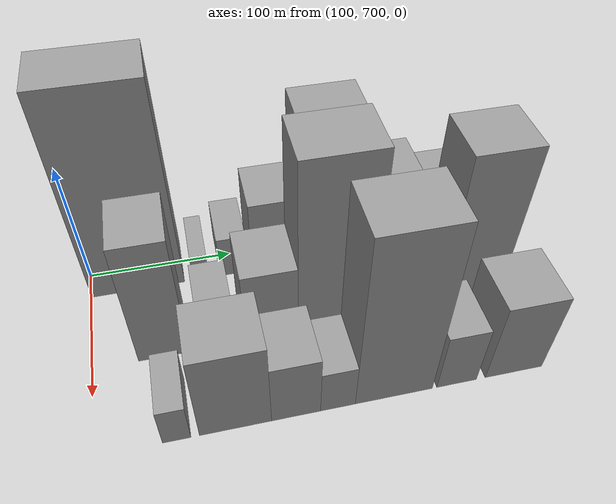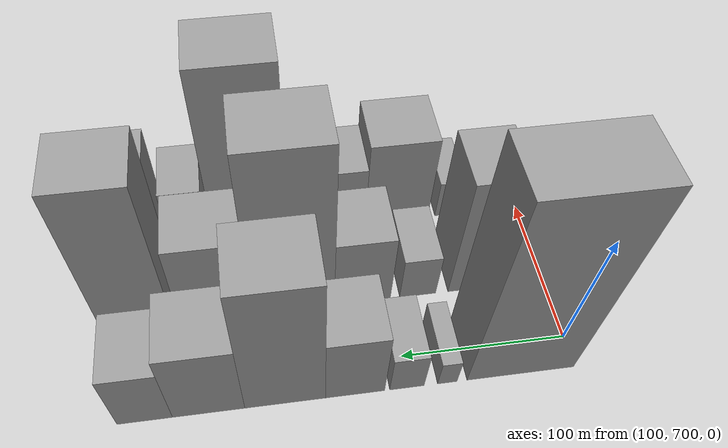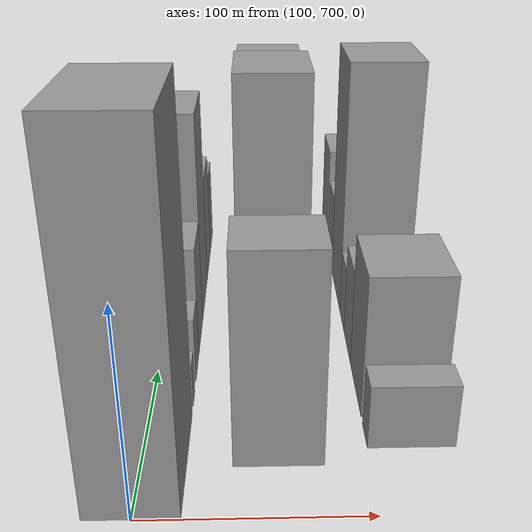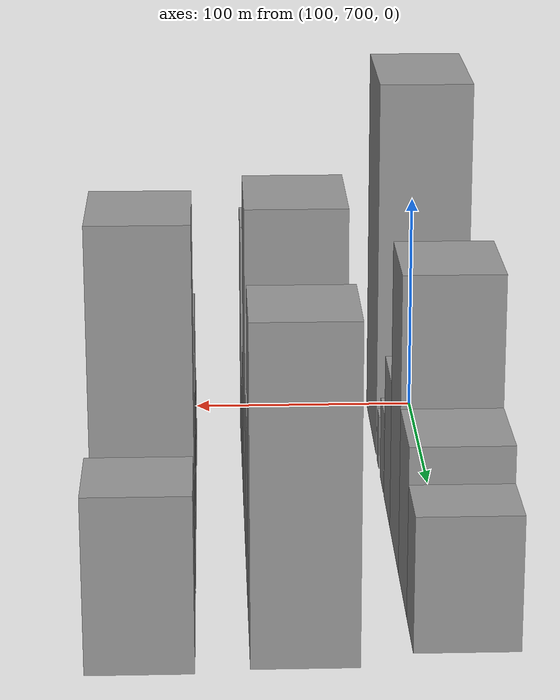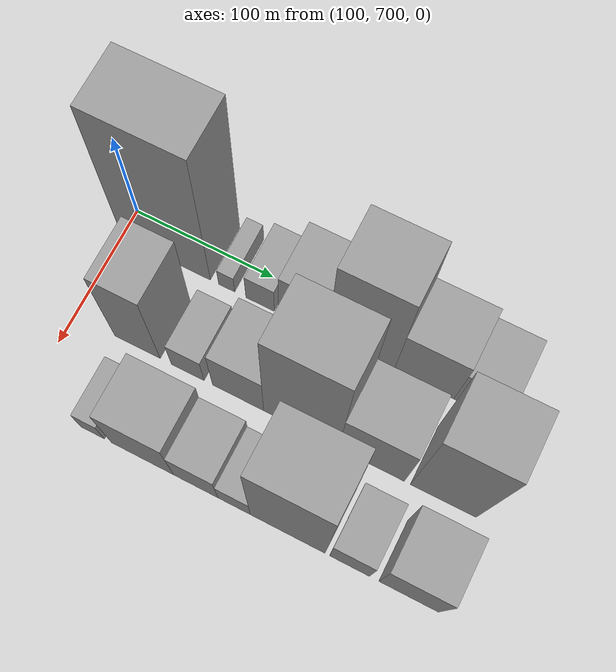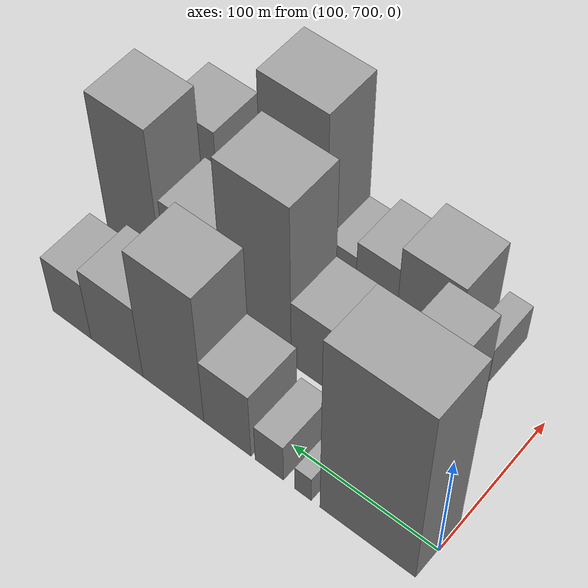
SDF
<sdf version="1.6">
 <world name="default">
  <model name="building_48">
   <static>1</static>
   <pose>100.0000 732.7020 0 0.000000 0.000000 0.000000</pose>
   <link name="link">
    <pose>0 0 84.00 0 0 0</pose>
    <collision name="collision"><geometry><box><size>40.0000 64.4607 168.0000</size></box></geometry></collision>
    <visual name="visual">
     <cast_shadows>0</cast_shadows>
     <geometry><box><size>40.0000 64.4607 168.0000</size></box></geometry>
     <material>
      <script>
       <uri>model://grey_wall/materials/scripts</uri>
       <uri>model://grey_wall/materials/textures</uri>
       <name>vrc/grey_wall</name>
      </script>
     </material>
    </visual>
   </link>
  </model>
  <model name="building_49">
   <static>1</static>
   <pose>100.0000 776.6969 0 0.000000 0.000000 0.000000</pose>
   <link name="link">
    <pose>0 0 12.00 0 0 0</pose>
    <collision name="collision"><geometry><box><size>40.0000 11.5290 24.0000</size></box></geometry></collision>
    <visual name="visual">
     <cast_shadows>0</cast_shadows>
     <geometry><box><size>40.0000 11.5290 24.0000</size></box></geometry>
     <material>
      <script>
       <uri>model://grey_wall/materials/scripts</uri>
       <uri>model://grey_wall/materials/textures</uri>
       <name>vrc/grey_wall</name>
      </script>
     </material>
    </visual>
   </link>
  </model>
  <model name="building_50">
   <static>1</static>
   <pose>100.0000 800.5964 0 0.000000 0.000000 0.000000</pose>
   <link name="link">
    <pose>0 0 18.00 0 0 0</pose>
    <collision name="collision"><geometry><box><size>40.0000 20.2701 36.0000</size></box></geometry></collision>
    <visual name="visual">
     <cast_shadows>0</cast_shadows>
     <geometry><box><size>40.0000 20.2701 36.0000</size></box></geometry>
     <material>
      <script>
       <uri>model://grey_wall/materials/scripts</uri>
       <uri>model://grey_wall/materials/textures</uri>
       <name>vrc/grey_wall</name>
      </script>
     </material>
    </visual>
   </link>
  </model>
  <model name="building_51">
   <static>1</static>
   <pose>100.0000 830.9675 0 0.000000 0.000000 0.000000</pose>
   <link name="link">
    <pose>0 0 31.50 0 0 0</pose>
    <collision name="collision"><geometry><box><size>40.0000 34.4720 63.0000</size></box></geometry></collision>
    <visual name="visual">
     <cast_shadows>0</cast_shadows>
     <geometry><box><size>40.0000 34.4720 63.0000</size></box></geometry>
     <material>
      <script>
       <uri>model://grey_wall/materials/scripts</uri>
       <uri>model://grey_wall/materials/textures</uri>
       <name>vrc/grey_wall</name>
      </script>
     </material>
    </visual>
   </link>
  </model>
  <model name="building_52">
   <static>1</static>
   <pose>100.0000 871.3192 0 0.000000 0.000000 0.000000</pose>
   <link name="link">
    <pose>0 0 61.50 0 0 0</pose>
    <collision name="collision"><geometry><box><size>40.0000 46.2315 123.0000</size></box></geometry></collision>
    <visual name="visual">
     <cast_shadows>0</cast_shadows>
     <geometry><box><size>40.0000 46.2315 123.0000</size></box></geometry>
     <material>
      <script>
       <uri>model://grey_wall/materials/scripts</uri>
       <uri>model://grey_wall/materials/textures</uri>
       <name>vrc/grey_wall</name>
      </script>
     </material>
    </visual>
   </link>
  </model>
  <model name="building_53">
   <static>1</static>
   <pose>100.0000 914.8398 0 0.000000 0.000000 0.000000</pose>
   <link name="link">
    <pose>0 0 34.50 0 0 0</pose>
    <collision name="collision"><geometry><box><size>40.0000 40.8098 69.0000</size></box></geometry></collision>
    <visual name="visual">
     <cast_shadows>0</cast_shadows>
     <geometry><box><size>40.0000 40.8098 69.0000</size></box></geometry>
     <material>
      <script>
       <uri>model://grey_wall/materials/scripts</uri>
       <uri>model://grey_wall/materials/textures</uri>
       <name>vrc/grey_wall</name>
      </script>
     </material>
    </visual>
   </link>
  </model>
  <model name="building_54">
   <static>1</static>
   <pose>100.0000 950.6938 0 0.000000 0.000000 0.000000</pose>
   <link name="link">
    <pose>0 0 27.00 0 0 0</pose>
    <collision name="collision"><geometry><box><size>40.0000 30.8981 54.0000</size></box></geometry></collision>
    <visual name="visual">
     <cast_shadows>0</cast_shadows>
     <geometry><box><size>40.0000 30.8981 54.0000</size></box></geometry>
     <material>
      <script>
       <uri>model://grey_wall/materials/scripts</uri>
       <uri>model://grey_wall/materials/textures</uri>
       <name>vrc/grey_wall</name>
      </script>
     </material>
    </visual>
   </link>
  </model>
  <model name="building_103">
   <static>1</static>
   <pose>160.0000 745.5565 0 0.000000 0.000000 0.000000</pose>
   <link name="link">
    <pose>0 0 52.50 0 0 0</pose>
    <collision name="collision"><geometry><box><size>40.0000 32.4956 105.0000</size></box></geometry></collision>
    <visual name="visual">
     <cast_shadows>0</cast_shadows>
     <geometry><box><size>40.0000 32.4956 105.0000</size></box></geometry>
     <material>
      <script>
       <uri>model://grey_wall/materials/scripts</uri>
       <uri>model://grey_wall/materials/textures</uri>
       <name>vrc/grey_wall</name>
      </script>
     </material>
    </visual>
   </link>
  </model>
  <model name="building_104">
   <static>1</static>
   <pose>160.0000 781.3296 0 0.000000 0.000000 0.000000</pose>
   <link name="link">
    <pose>0 0 19.50 0 0 0</pose>
    <collision name="collision"><geometry><box><size>40.0000 23.0507 39.0000</size></box></geometry></collision>
    <visual name="visual">
     <cast_shadows>0</cast_shadows>
     <geometry><box><size>40.0000 23.0507 39.0000</size></box></geometry>
     <material>
      <script>
       <uri>model://grey_wall/materials/scripts</uri>
       <uri>model://grey_wall/materials/textures</uri>
       <name>vrc/grey_wall</name>
      </script>
     </material>
    </visual>
   </link>
  </model>
  <model name="building_105">
   <static>1</static>
   <pose>160.0000 816.6064 0 0.000000 0.000000 0.000000</pose>
   <link name="link">
    <pose>0 0 31.50 0 0 0</pose>
    <collision name="collision"><geometry><box><size>40.0000 35.5027 63.0000</size></box></geometry></collision>
    <visual name="visual">
     <cast_shadows>0</cast_shadows>
     <geometry><box><size>40.0000 35.5027 63.0000</size></box></geometry>
     <material>
      <script>
       <uri>model://grey_wall/materials/scripts</uri>
       <uri>model://grey_wall/materials/textures</uri>
       <name>vrc/grey_wall</name>
      </script>
     </material>
    </visual>
   </link>
  </model>
  <model name="building_106">
   <static>1</static>
   <pose>160.0000 860.0116 0 0.000000 0.000000 0.000000</pose>
   <link name="link">
    <pose>0 0 73.50 0 0 0</pose>
    <collision name="collision"><geometry><box><size>40.0000 51.3078 147.0000</size></box></geometry></collision>
    <visual name="visual">
     <cast_shadows>0</cast_shadows>
     <geometry><box><size>40.0000 51.3078 147.0000</size></box></geometry>
     <material>
      <script>
       <uri>model://grey_wall/materials/scripts</uri>
       <uri>model://grey_wall/materials/textures</uri>
       <name>vrc/grey_wall</name>
      </script>
     </material>
    </visual>
   </link>
  </model>
  <model name="building_107">
   <static>1</static>
   <pose>160.0000 907.7728 0 0.000000 0.000000 0.000000</pose>
   <link name="link">
    <pose>0 0 37.50 0 0 0</pose>
    <collision name="collision"><geometry><box><size>40.0000 44.2146 75.0000</size></box></geometry></collision>
    <visual name="visual">
     <cast_shadows>0</cast_shadows>
     <geometry><box><size>40.0000 44.2146 75.0000</size></box></geometry>
     <material>
      <script>
       <uri>model://grey_wall/materials/scripts</uri>
       <uri>model://grey_wall/materials/textures</uri>
       <name>vrc/grey_wall</name>
      </script>
     </material>
    </visual>
   </link>
  </model>
  <model name="building_108">
   <static>1</static>
   <pose>160.0000 955.5445 0 0.000000 0.000000 0.000000</pose>
   <link name="link">
    <pose>0 0 66.00 0 0 0</pose>
    <collision name="collision"><geometry><box><size>40.0000 43.3289 132.0000</size></box></geometry></collision>
    <visual name="visual">
     <cast_shadows>0</cast_shadows>
     <geometry><box><size>40.0000 43.3289 132.0000</size></box></geometry>
     <material>
      <script>
       <uri>model://grey_wall/materials/scripts</uri>
       <uri>model://grey_wall/materials/textures</uri>
       <name>vrc/grey_wall</name>
      </script>
     </material>
    </visual>
   </link>
  </model>
  <model name="building_159">
   <static>1</static>
   <pose>220.0000 748.0587 0 0.000000 0.000000 0.000000</pose>
   <link name="link">
    <pose>0 0 16.50 0 0 0</pose>
    <collision name="collision"><geometry><box><size>40.0000 16.6338 33.0000</size></box></geometry></collision>
    <visual name="visual">
     <cast_shadows>0</cast_shadows>
     <geometry><box><size>40.0000 16.6338 33.0000</size></box></geometry>
     <material>
      <script>
       <uri>model://grey_wall/materials/scripts</uri>
       <uri>model://grey_wall/materials/textures</uri>
       <name>vrc/grey_wall</name>
      </script>
     </material>
    </visual>
   </link>
  </model>
  <model name="building_160">
   <static>1</static>
   <pose>220.0000 783.0269 0 0.000000 0.000000 0.000000</pose>
   <link name="link">
    <pose>0 0 37.50 0 0 0</pose>
    <collision name="collision"><geometry><box><size>40.0000 43.3027 75.0000</size></box></geometry></collision>
    <visual name="visual">
     <cast_shadows>0</cast_shadows>
     <geometry><box><size>40.0000 43.3027 75.0000</size></box></geometry>
     <material>
      <script>
       <uri>model://grey_wall/materials/scripts</uri>
       <uri>model://grey_wall/materials/textures</uri>
       <name>vrc/grey_wall</name>
      </script>
     </material>
    </visual>
   </link>
  </model>
  <model name="building_161">
   <static>1</static>
   <pose>220.0000 819.7863 0 0.000000 0.000000 0.000000</pose>
   <link name="link">
    <pose>0 0 27.00 0 0 0</pose>
    <collision name="collision"><geometry><box><size>40.0000 30.2160 54.0000</size></box></geometry></collision>
    <visual name="visual">
     <cast_shadows>0</cast_shadows>
     <geometry><box><size>40.0000 30.2160 54.0000</size></box></geometry>
     <material>
      <script>
       <uri>model://grey_wall/materials/scripts</uri>
       <uri>model://grey_wall/materials/textures</uri>
       <name>vrc/grey_wall</name>
      </script>
     </material>
    </visual>
   </link>
  </model>
  <model name="building_162">
   <static>1</static>
   <pose>220.0000 845.8004 0 0.000000 0.000000 0.000000</pose>
   <link name="link">
    <pose>0 0 19.50 0 0 0</pose>
    <collision name="collision"><geometry><box><size>40.0000 21.8121 39.0000</size></box></geometry></collision>
    <visual name="visual">
     <cast_shadows>0</cast_shadows>
     <geometry><box><size>40.0000 21.8121 39.0000</size></box></geometry>
     <material>
      <script>
       <uri>model://grey_wall/materials/scripts</uri>
       <uri>model://grey_wall/materials/textures</uri>
       <name>vrc/grey_wall</name>
      </script>
     </material>
    </visual>
   </link>
  </model>
  <model name="building_163">
   <static>1</static>
   <pose>220.0000 881.5925 0 0.000000 0.000000 0.000000</pose>
   <link name="link">
    <pose>0 0 73.50 0 0 0</pose>
    <collision name="collision"><geometry><box><size>40.0000 49.7721 147.0000</size></box></geometry></collision>
    <visual name="visual">
     <cast_shadows>0</cast_shadows>
     <geometry><box><size>40.0000 49.7721 147.0000</size></box></geometry>
     <material>
      <script>
       <uri>model://grey_wall/materials/scripts</uri>
       <uri>model://grey_wall/materials/textures</uri>
       <name>vrc/grey_wall</name>
      </script>
     </material>
    </visual>
   </link>
  </model>
  <model name="building_164">
   <static>1</static>
   <pose>220.0000 922.5987 0 0.000000 0.000000 0.000000</pose>
   <link name="link">
    <pose>0 0 25.50 0 0 0</pose>
    <collision name="collision"><geometry><box><size>40.0000 26.2402 51.0000</size></box></geometry></collision>
    <visual name="visual">
     <cast_shadows>0</cast_shadows>
     <geometry><box><size>40.0000 26.2402 51.0000</size></box></geometry>
     <material>
      <script>
       <uri>model://grey_wall/materials/scripts</uri>
       <uri>model://grey_wall/materials/textures</uri>
       <name>vrc/grey_wall</name>
      </script>
     </material>
    </visual>
   </link>
  </model>
  <model name="building_165">
   <static>1</static>
   <pose>220.0000 960.9531 0 0.000000 0.000000 0.000000</pose>
   <link name="link">
    <pose>0 0 34.50 0 0 0</pose>
    <collision name="collision"><geometry><box><size>40.0000 38.4686 69.0000</size></box></geometry></collision>
    <visual name="visual">
     <cast_shadows>0</cast_shadows>
     <geometry><box><size>40.0000 38.4686 69.0000</size></box></geometry>
     <material>
      <script>
       <uri>model://grey_wall/materials/scripts</uri>
       <uri>model://grey_wall/materials/textures</uri>
       <name>vrc/grey_wall</name>
      </script>
     </material>
    </visual>
   </link>
  </model>
 </world>
</sdf>
